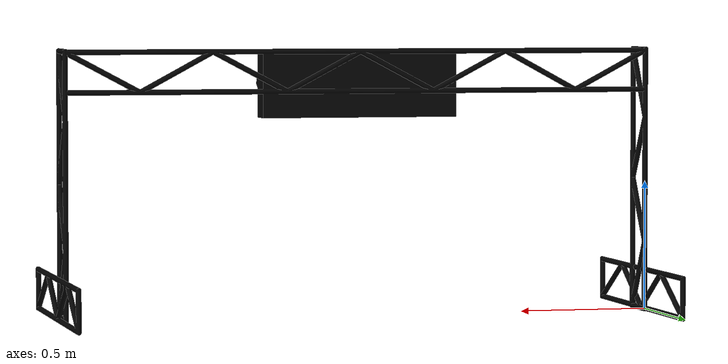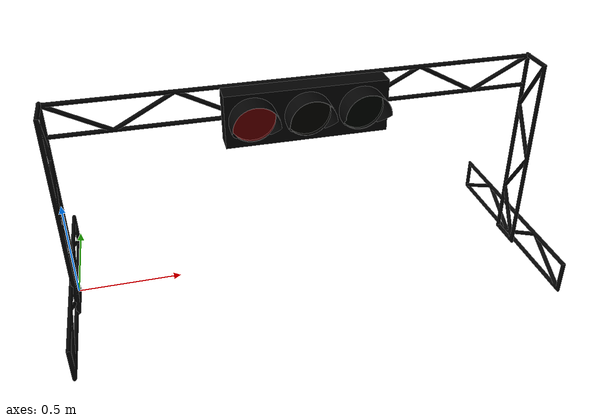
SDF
<?xml version='1.0'?>
<sdf version='1.7'>

  <model name="traffic_sim">
    <scale>1.0 1.0 1.0</scale>  <!-- global scale disabled; use explicit values below -->
    <static>true</static>

    <!-- 신호등 본체 -->
    <link name="traffic_light_body">
      <visual name="traffic_light_visual">
        <geometry>
          <mesh>
            <uri>model://traffic_sim/meshes/traffic.dae</uri>
            <scale>0.001015 0.001015 0.001015</scale>
          </mesh>
        </geometry>
        <material>
          <ambient>0.01 0.01 0.01 1</ambient>
          <diffuse>0.01 0.01 0.01 1</diffuse>
          <specular>0.1 0.1 0.1 1</specular>
        </material>
      </visual>
    </link>

    <!-- 빨간 불빛 -->
    <link name="red_light_link">
      <pose>0.88725 -0.098 0.8883 1.57 0 0</pose>
      <light name="red" type="spot">
        <pose>0 -0.042 -0.098 2.469999 0 0</pose>
        <attenuation>
          <range>30</range>
          <linear>0.05</linear>
        </attenuation>
        <diffuse>1 0 0 1</diffuse>
        <specular>1 1 1 1</specular>
        <spot>
          <inner_angle>0.3</inner_angle>
          <outer_angle>1.35</outer_angle>
          <falloff>1</falloff>
        </spot>
        <direction>0 0 -1</direction>
      </light>

      <visual name="red">
        <geometry>
          <cylinder>
            <radius>0.105</radius>
            <length>0.035</length>
          </cylinder>
          <sphere>
            <radius>0.14</radius>
          </sphere>
        </geometry>
        <transparency>0.6</transparency>
        <material>
          <ambient> 1 0 0 1</ambient>
          <diffuse> 1 0 0 1</diffuse>
          <specular>1 1 1 1</specular>
          <emissive>1 0 0 1</emissive>
      </material>
      </visual>
    </link>

    <!-- 노란 불빛 -->
    <link name="yellow_light_link">
      <pose>1.141 -0.10255 0.8883 1.57 0 0</pose>
      <light name="yellow" type="spot">
        <pose>0 -0.042 -0.098 2.469999 0 0</pose>
        <attenuation>
          <range>30</range>
          <linear>0.05</linear>
        </attenuation>
        <diffuse>0 0 0 1</diffuse>
        <specular>1 1 1 1</specular>
        <spot>
          <inner_angle>0.3</inner_angle>
          <outer_angle>1.35</outer_angle>
          <falloff>1</falloff>
        </spot>
        <direction>0 0 -1</direction>
      </light>
      <visual name="yellow">
        <geometry>
          <cylinder>
            <radius>0.105</radius>
            <length>0.035</length>
          </cylinder>
          <sphere>
            <radius>0.14</radius>
          </sphere>
        </geometry>
        <transparency>0.6</transparency>
        <material>
          <ambient>0.03 0.03 0 1</ambient>
          <diffuse>0.03 0.03 0 1</diffuse>
          <specular>1 1 1 1</specular>
          <emissive>0 0 0 1 </emissive>
        </material>
      </visual>
    </link>

    <!-- 초록 불빛 -->
    <link name="green_light_link">
      <pose>1.3944 -0.098 0.8883  1.57 0 0</pose>
      <light name="green" type="spot">
        <pose>0 -0.042 -0.098 2.469999 0 0</pose>
        <attenuation>
          <range>30</range>
          <linear>0.05</linear>
        </attenuation>
        <diffuse>0 0 0 1</diffuse>
        <specular>1 1 1 1</specular>
        <spot>
          <inner_angle>0.3</inner_angle>
          <outer_angle>1.35</outer_angle>
          <falloff>1</falloff>
        </spot>
        <direction>0 0 -1</direction>
      </light>

      <visual name="green">
        <geometry>
          <cylinder>
            <radius>0.105</radius>
            <length>0.035</length>
          </cylinder>
          <sphere>
            <radius>0.14</radius>
          </sphere>
        </geometry>
        <transparency>0.6</transparency>
        <material>
          <ambient>0 0.03 0 1</ambient>
          <diffuse>0 0.03 0 1</diffuse>
          <specular>1 1 1 1</specular>
          <emissive>0 0 0 1</emissive>
        </material>
      </visual>
    </link>

    <!-- Manual control is handled by simulation_pkg/traffic_light_keyboard_controller. -->

  </model>
</sdf>
